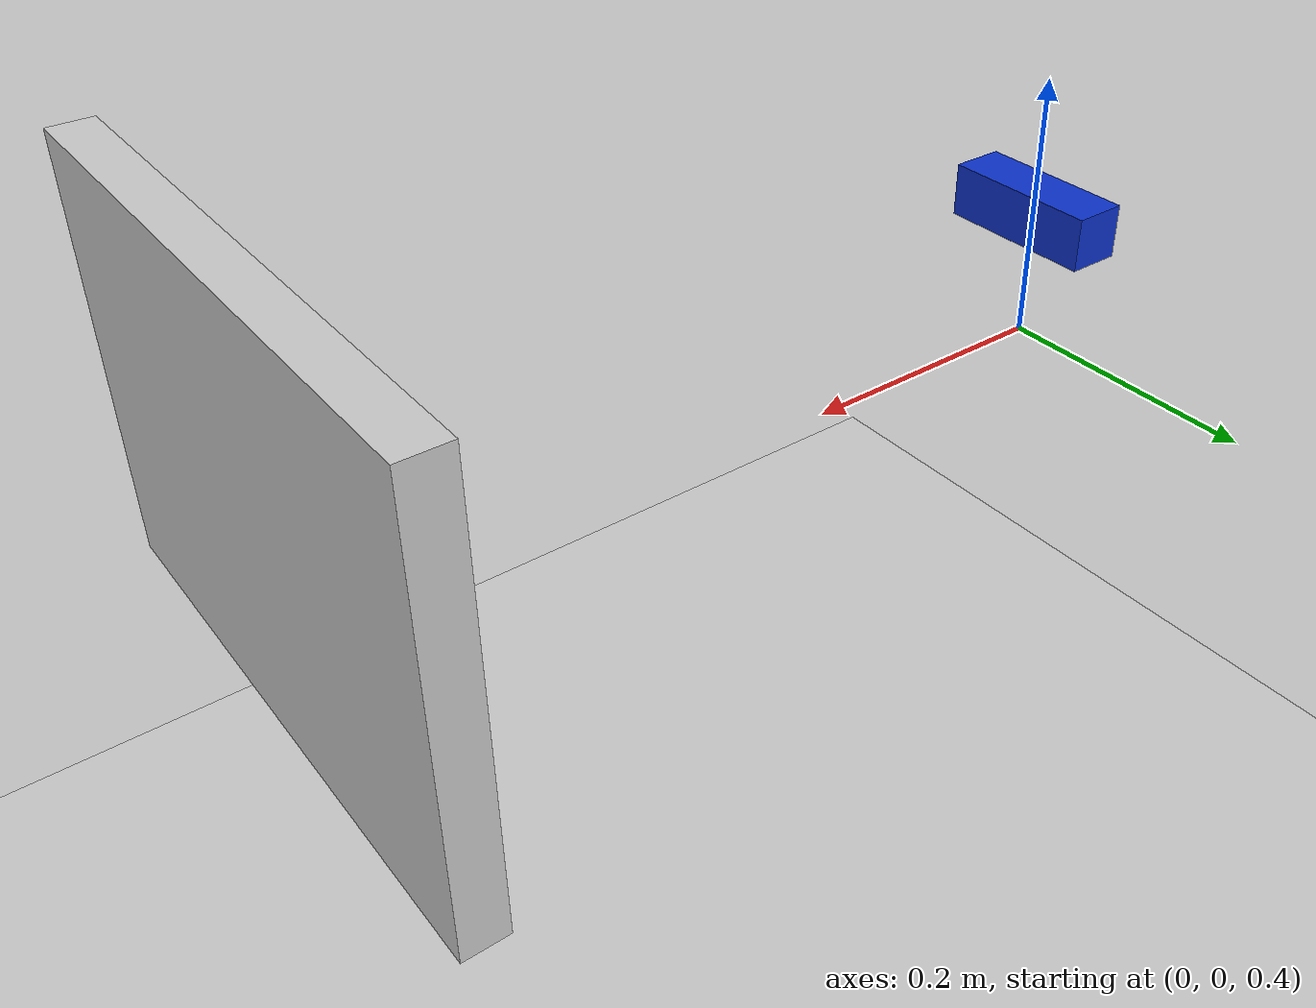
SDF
<?xml version="1.0"?>
<sdf version="1.7">
  <world name="semantic_panel_test">
    <include><uri>model://ground_plane</uri></include>
    <include><uri>model://sun</uri></include>
    <plugin name="gazebo_ros_state" filename="libgazebo_ros_state.so">
      <update_rate>30</update_rate>
    </plugin>
    <include>
      <uri>model://stereo_rig</uri>
      <pose>0 0 0 0 0 0</pose>
    </include>
    <include>
      <uri>model://semantic_panel</uri>
      <pose>0.60 0 0.50 0 0 0</pose>
    </include>
  </world>
</sdf>

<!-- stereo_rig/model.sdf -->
<sdf version="1.7">
  <model name="stereo_rig">
    <static>true</static>
    <link name="stereo_left_camera_optical_frame">
      <pose>0 0 0.50 0 0 0</pose>
      <visual name="housing">
        <geometry><box><size>0.04 0.12 0.04</size></box></geometry>
        <material><ambient>0.05 0.20 0.80 1</ambient></material>
      </visual>
      <sensor name="stereo_rig" type="multicamera">
        <always_on>true</always_on>
        <update_rate>30</update_rate>
        <visualize>false</visualize>
        <camera name="left">
          <horizontal_fov>1.138626</horizontal_fov>
          <image><width>640</width><height>480</height><format>R8G8B8</format></image>
          <clip><near>0.10</near><far>4.00</far></clip>
        </camera>
        <camera name="right">
          <pose>0 -0.06 0 0 0 0</pose>
          <horizontal_fov>1.138626</horizontal_fov>
          <image><width>640</width><height>480</height><format>R8G8B8</format></image>
          <clip><near>0.10</near><far>4.00</far></clip>
        </camera>
        <plugin name="stereo_camera" filename="libgazebo_ros_camera.so">
          <ros><namespace>/stereo</namespace></ros>
          <camera_name>stereo_rig</camera_name>
          <frame_name>stereo_left_camera_optical_frame</frame_name>
          <hack_baseline>0.06</hack_baseline>
        </plugin>
      </sensor>
    </link>
  </model>
</sdf>

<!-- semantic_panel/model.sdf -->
<sdf version="1.7">
  <model name="semantic_panel">
    <static>true</static>
    <link name="panel_link">
      <visual name="panel_back">
        <geometry>
          <box>
            <size>0.03 0.42 0.30</size>
          </box>
        </geometry>
        <material>
          <ambient>0.8 0.8 0.8 1</ambient>
          <diffuse>0.8 0.8 0.8 1</diffuse>
        </material>
      </visual>
      <collision name="panel_collision">
        <geometry>
          <box>
            <size>0.03 0.42 0.30</size>
          </box>
        </geometry>
      </collision>
      <visual name="mute_button">
        <pose>-0.027 -0.12 0.045 0 1.57079632679 0</pose>
        <geometry>
          <cylinder>
            <radius>0.029</radius>
            <length>0.024</length>
          </cylinder>
        </geometry>
        <material>
          <ambient>0.85 0.04 0.04 1</ambient>
          <diffuse>0.85 0.04 0.04 1</diffuse>
        </material>
      </visual>
      <visual name="reset_button">
        <pose>-0.027 0 0.045 0 1.57079632679 0</pose>
        <geometry>
          <cylinder>
            <radius>0.029</radius>
            <length>0.024</length>
          </cylinder>
        </geometry>
        <material>
          <ambient>0.04 0.78 0.04 1</ambient>
          <diffuse>0.04 0.78 0.04 1</diffuse>
        </material>
      </visual>
      <visual name="confirm_button">
        <pose>-0.027 0.12 0.045 0 1.57079632679 0</pose>
        <geometry>
          <cylinder>
            <radius>0.029</radius>
            <length>0.024</length>
          </cylinder>
        </geometry>
        <material>
          <ambient>0.04 0.12 0.9 1</ambient>
          <diffuse>0.04 0.12 0.9 1</diffuse>
        </material>
      </visual>
      <visual name="mute_texture">
        <pose>-0.040 -0.12 0.045 0 0 0</pose>
        <geometry>
          <box>
            <size>0.002 0.005 0.035</size>
          </box>
        </geometry>
        <material>
          <ambient>0.01 0.01 0.01 1</ambient>
        </material>
      </visual>
      <visual name="reset_texture">
        <pose>-0.040 0 0.045 0 0 0</pose>
        <geometry>
          <box>
            <size>0.002 0.005 0.035</size>
          </box>
        </geometry>
        <material>
          <ambient>0.01 0.01 0.01 1</ambient>
        </material>
      </visual>
      <visual name="confirm_texture">
        <pose>-0.040 0.12 0.045 0 0 0</pose>
        <geometry>
          <box>
            <size>0.002 0.005 0.035</size>
          </box>
        </geometry>
        <material>
          <ambient>0.01 0.01 0.01 1</ambient>
        </material>
      </visual>
      <visual name="aruco_white_plate">
        <pose>-0.019 0 -0.075 0 0 0</pose>
        <geometry>
          <box>
            <size>0.002 0.084 0.084</size>
          </box>
        </geometry>
        <material>
          <ambient>1 1 1 1</ambient>
          <diffuse>1 1 1 1</diffuse>
        </material>
      </visual>
      <visual name="aruco_black_0_0">
        <pose>-0.021 0.036000 -0.039000 0 0 0</pose>
        <geometry>
          <box>
            <size>0.002 0.012 0.012</size>
          </box>
        </geometry>
        <material>
          <ambient>0 0 0 1</ambient>
          <diffuse>0 0 0 1</diffuse>
        </material>
      </visual>
      <visual name="aruco_black_0_1">
        <pose>-0.021 0.024000 -0.039000 0 0 0</pose>
        <geometry>
          <box>
            <size>0.002 0.012 0.012</size>
          </box>
        </geometry>
        <material>
          <ambient>0 0 0 1</ambient>
          <diffuse>0 0 0 1</diffuse>
        </material>
      </visual>
      <visual name="aruco_black_0_2">
        <pose>-0.021 0.012000 -0.039000 0 0 0</pose>
        <geometry>
          <box>
            <size>0.002 0.012 0.012</size>
          </box>
        </geometry>
        <material>
          <ambient>0 0 0 1</ambient>
          <diffuse>0 0 0 1</diffuse>
        </material>
      </visual>
      <visual name="aruco_black_0_3">
        <pose>-0.021 0.000000 -0.039000 0 0 0</pose>
        <geometry>
          <box>
            <size>0.002 0.012 0.012</size>
          </box>
        </geometry>
        <material>
          <ambient>0 0 0 1</ambient>
          <diffuse>0 0 0 1</diffuse>
        </material>
      </visual>
      <visual name="aruco_black_0_4">
        <pose>-0.021 -0.012000 -0.039000 0 0 0</pose>
        <geometry>
          <box>
            <size>0.002 0.012 0.012</size>
          </box>
        </geometry>
        <material>
          <ambient>0 0 0 1</ambient>
          <diffuse>0 0 0 1</diffuse>
        </material>
      </visual>
      <visual name="aruco_black_0_5">
        <pose>-0.021 -0.024000 -0.039000 0 0 0</pose>
        <geometry>
          <box>
            <size>0.002 0.012 0.012</size>
          </box>
        </geometry>
        <material>
          <ambient>0 0 0 1</ambient>
          <diffuse>0 0 0 1</diffuse>
        </material>
      </visual>
      <visual name="aruco_black_0_6">
        <pose>-0.021 -0.036000 -0.039000 0 0 0</pose>
        <geometry>
          <box>
            <size>0.002 0.012 0.012</size>
          </box>
        </geometry>
        <material>
          <ambient>0 0 0 1</ambient>
          <diffuse>0 0 0 1</diffuse>
        </material>
      </visual>
      <visual name="aruco_black_1_0">
        <pose>-0.021 0.036000 -0.051000 0 0 0</pose>
        <geometry>
          <box>
            <size>0.002 0.012 0.012</size>
          </box>
        </geometry>
        <material>
          <ambient>0 0 0 1</ambient>
          <diffuse>0 0 0 1</diffuse>
        </material>
      </visual>
      <visual name="aruco_black_1_1">
        <pose>-0.021 0.024000 -0.051000 0 0 0</pose>
        <geometry>
          <box>
            <size>0.002 0.012 0.012</size>
          </box>
        </geometry>
        <material>
          <ambient>0 0 0 1</ambient>
          <diffuse>0 0 0 1</diffuse>
        </material>
      </visual>
      <visual name="aruco_black_1_3">
        <pose>-0.021 0.000000 -0.051000 0 0 0</pose>
        <geometry>
          <box>
            <size>0.002 0.012 0.012</size>
          </box>
        </geometry>
        <material>
          <ambient>0 0 0 1</ambient>
          <diffuse>0 0 0 1</diffuse>
        </material>
      </visual>
      <visual name="aruco_black_1_4">
        <pose>-0.021 -0.012000 -0.051000 0 0 0</pose>
        <geometry>
          <box>
            <size>0.002 0.012 0.012</size>
          </box>
        </geometry>
        <material>
          <ambient>0 0 0 1</ambient>
          <diffuse>0 0 0 1</diffuse>
        </material>
      </visual>
      <visual name="aruco_black_1_6">
        <pose>-0.021 -0.036000 -0.051000 0 0 0</pose>
        <geometry>
          <box>
            <size>0.002 0.012 0.012</size>
          </box>
        </geometry>
        <material>
          <ambient>0 0 0 1</ambient>
          <diffuse>0 0 0 1</diffuse>
        </material>
      </visual>
      <visual name="aruco_black_2_0">
        <pose>-0.021 0.036000 -0.063000 0 0 0</pose>
        <geometry>
          <box>
            <size>0.002 0.012 0.012</size>
          </box>
        </geometry>
        <material>
          <ambient>0 0 0 1</ambient>
          <diffuse>0 0 0 1</diffuse>
        </material>
      </visual>
      <visual name="aruco_black_2_2">
        <pose>-0.021 0.012000 -0.063000 0 0 0</pose>
        <geometry>
          <box>
            <size>0.002 0.012 0.012</size>
          </box>
        </geometry>
        <material>
          <ambient>0 0 0 1</ambient>
          <diffuse>0 0 0 1</diffuse>
        </material>
      </visual>
      <visual name="aruco_black_2_6">
        <pose>-0.021 -0.036000 -0.063000 0 0 0</pose>
        <geometry>
          <box>
            <size>0.002 0.012 0.012</size>
          </box>
        </geometry>
        <material>
          <ambient>0 0 0 1</ambient>
          <diffuse>0 0 0 1</diffuse>
        </material>
      </visual>
      <visual name="aruco_black_3_0">
        <pose>-0.021 0.036000 -0.075000 0 0 0</pose>
        <geometry>
          <box>
            <size>0.002 0.012 0.012</size>
          </box>
        </geometry>
        <material>
          <ambient>0 0 0 1</ambient>
          <diffuse>0 0 0 1</diffuse>
        </material>
      </visual>
      <visual name="aruco_black_3_2">
        <pose>-0.021 0.012000 -0.075000 0 0 0</pose>
        <geometry>
          <box>
            <size>0.002 0.012 0.012</size>
          </box>
        </geometry>
        <material>
          <ambient>0 0 0 1</ambient>
          <diffuse>0 0 0 1</diffuse>
        </material>
      </visual>
      <visual name="aruco_black_3_3">
        <pose>-0.021 0.000000 -0.075000 0 0 0</pose>
        <geometry>
          <box>
            <size>0.002 0.012 0.012</size>
          </box>
        </geometry>
        <material>
          <ambient>0 0 0 1</ambient>
          <diffuse>0 0 0 1</diffuse>
        </material>
      </visual>
      <visual name="aruco_black_3_4">
        <pose>-0.021 -0.012000 -0.075000 0 0 0</pose>
        <geometry>
          <box>
            <size>0.002 0.012 0.012</size>
          </box>
        </geometry>
        <material>
          <ambient>0 0 0 1</ambient>
          <diffuse>0 0 0 1</diffuse>
        </material>
      </visual>
      <visual name="aruco_black_3_5">
        <pose>-0.021 -0.024000 -0.075000 0 0 0</pose>
        <geometry>
          <box>
            <size>0.002 0.012 0.012</size>
          </box>
        </geometry>
        <material>
          <ambient>0 0 0 1</ambient>
          <diffuse>0 0 0 1</diffuse>
        </material>
      </visual>
      <visual name="aruco_black_3_6">
        <pose>-0.021 -0.036000 -0.075000 0 0 0</pose>
        <geometry>
          <box>
            <size>0.002 0.012 0.012</size>
          </box>
        </geometry>
        <material>
          <ambient>0 0 0 1</ambient>
          <diffuse>0 0 0 1</diffuse>
        </material>
      </visual>
      <visual name="aruco_black_4_0">
        <pose>-0.021 0.036000 -0.087000 0 0 0</pose>
        <geometry>
          <box>
            <size>0.002 0.012 0.012</size>
          </box>
        </geometry>
        <material>
          <ambient>0 0 0 1</ambient>
          <diffuse>0 0 0 1</diffuse>
        </material>
      </visual>
      <visual name="aruco_black_4_2">
        <pose>-0.021 0.012000 -0.087000 0 0 0</pose>
        <geometry>
          <box>
            <size>0.002 0.012 0.012</size>
          </box>
        </geometry>
        <material>
          <ambient>0 0 0 1</ambient>
          <diffuse>0 0 0 1</diffuse>
        </material>
      </visual>
      <visual name="aruco_black_4_6">
        <pose>-0.021 -0.036000 -0.087000 0 0 0</pose>
        <geometry>
          <box>
            <size>0.002 0.012 0.012</size>
          </box>
        </geometry>
        <material>
          <ambient>0 0 0 1</ambient>
          <diffuse>0 0 0 1</diffuse>
        </material>
      </visual>
      <visual name="aruco_black_5_0">
        <pose>-0.021 0.036000 -0.099000 0 0 0</pose>
        <geometry>
          <box>
            <size>0.002 0.012 0.012</size>
          </box>
        </geometry>
        <material>
          <ambient>0 0 0 1</ambient>
          <diffuse>0 0 0 1</diffuse>
        </material>
      </visual>
      <visual name="aruco_black_5_1">
        <pose>-0.021 0.024000 -0.099000 0 0 0</pose>
        <geometry>
          <box>
            <size>0.002 0.012 0.012</size>
          </box>
        </geometry>
        <material>
          <ambient>0 0 0 1</ambient>
          <diffuse>0 0 0 1</diffuse>
        </material>
      </visual>
      <visual name="aruco_black_5_3">
        <pose>-0.021 0.000000 -0.099000 0 0 0</pose>
        <geometry>
          <box>
            <size>0.002 0.012 0.012</size>
          </box>
        </geometry>
        <material>
          <ambient>0 0 0 1</ambient>
          <diffuse>0 0 0 1</diffuse>
        </material>
      </visual>
      <visual name="aruco_black_5_4">
        <pose>-0.021 -0.012000 -0.099000 0 0 0</pose>
        <geometry>
          <box>
            <size>0.002 0.012 0.012</size>
          </box>
        </geometry>
        <material>
          <ambient>0 0 0 1</ambient>
          <diffuse>0 0 0 1</diffuse>
        </material>
      </visual>
      <visual name="aruco_black_5_6">
        <pose>-0.021 -0.036000 -0.099000 0 0 0</pose>
        <geometry>
          <box>
            <size>0.002 0.012 0.012</size>
          </box>
        </geometry>
        <material>
          <ambient>0 0 0 1</ambient>
          <diffuse>0 0 0 1</diffuse>
        </material>
      </visual>
      <visual name="aruco_black_6_0">
        <pose>-0.021 0.036000 -0.111000 0 0 0</pose>
        <geometry>
          <box>
            <size>0.002 0.012 0.012</size>
          </box>
        </geometry>
        <material>
          <ambient>0 0 0 1</ambient>
          <diffuse>0 0 0 1</diffuse>
        </material>
      </visual>
      <visual name="aruco_black_6_1">
        <pose>-0.021 0.024000 -0.111000 0 0 0</pose>
        <geometry>
          <box>
            <size>0.002 0.012 0.012</size>
          </box>
        </geometry>
        <material>
          <ambient>0 0 0 1</ambient>
          <diffuse>0 0 0 1</diffuse>
        </material>
      </visual>
      <visual name="aruco_black_6_2">
        <pose>-0.021 0.012000 -0.111000 0 0 0</pose>
        <geometry>
          <box>
            <size>0.002 0.012 0.012</size>
          </box>
        </geometry>
        <material>
          <ambient>0 0 0 1</ambient>
          <diffuse>0 0 0 1</diffuse>
        </material>
      </visual>
      <visual name="aruco_black_6_3">
        <pose>-0.021 0.000000 -0.111000 0 0 0</pose>
        <geometry>
          <box>
            <size>0.002 0.012 0.012</size>
          </box>
        </geometry>
        <material>
          <ambient>0 0 0 1</ambient>
          <diffuse>0 0 0 1</diffuse>
        </material>
      </visual>
      <visual name="aruco_black_6_4">
        <pose>-0.021 -0.012000 -0.111000 0 0 0</pose>
        <geometry>
          <box>
            <size>0.002 0.012 0.012</size>
          </box>
        </geometry>
        <material>
          <ambient>0 0 0 1</ambient>
          <diffuse>0 0 0 1</diffuse>
        </material>
      </visual>
      <visual name="aruco_black_6_5">
        <pose>-0.021 -0.024000 -0.111000 0 0 0</pose>
        <geometry>
          <box>
            <size>0.002 0.012 0.012</size>
          </box>
        </geometry>
        <material>
          <ambient>0 0 0 1</ambient>
          <diffuse>0 0 0 1</diffuse>
        </material>
      </visual>
      <visual name="aruco_black_6_6">
        <pose>-0.021 -0.036000 -0.111000 0 0 0</pose>
        <geometry>
          <box>
            <size>0.002 0.012 0.012</size>
          </box>
        </geometry>
        <material>
          <ambient>0 0 0 1</ambient>
          <diffuse>0 0 0 1</diffuse>
        </material>
      </visual>
    </link>
  </model>
</sdf>
